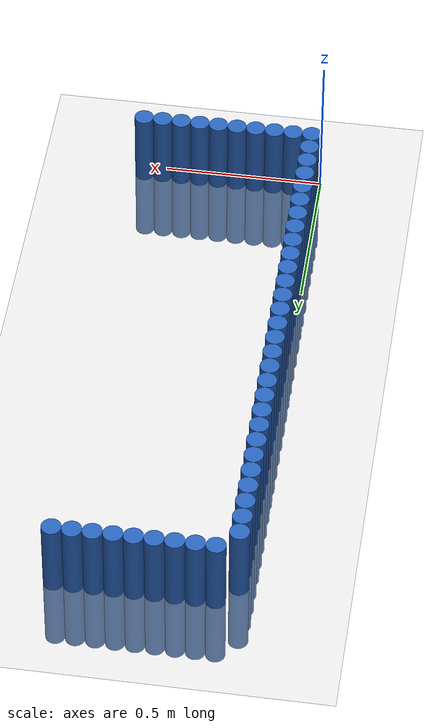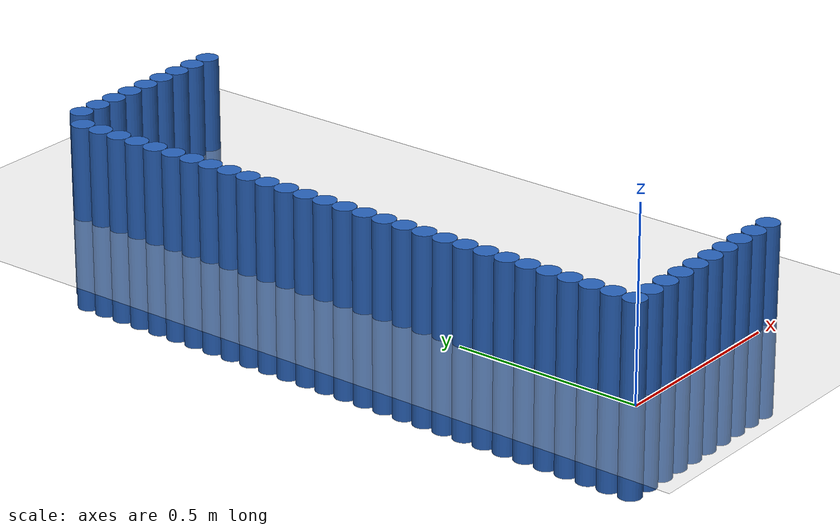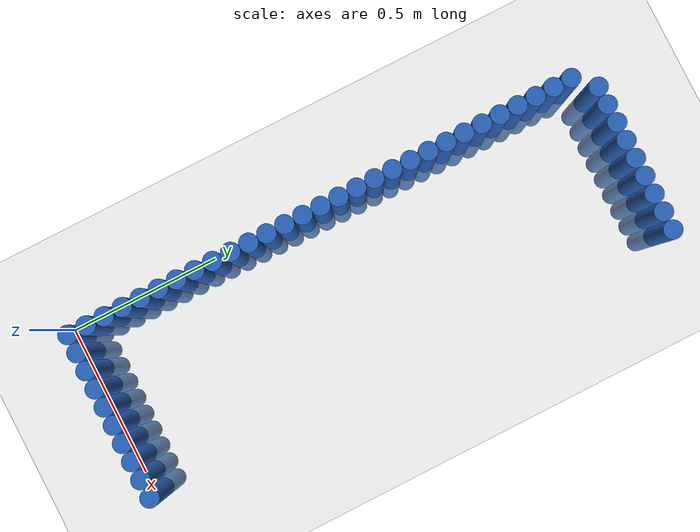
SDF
<sdf version="1.6">
 <world name="default">
  <model name="ground_plane">
   <static>1</static>
   <link name="link">
    <collision name="collision">
     <geometry><plane><normal>0 0 1</normal><size>100 100</size></plane></geometry>
     <surface><friction><ode><mu>100</mu><mu2>50</mu2></ode></friction></surface>
    </collision>
    <visual name="visual">
     <cast_shadows>0</cast_shadows>
     <geometry><plane><normal>0 0 1</normal><size>100 100</size></plane></geometry>
     <material>
      <script><uri>file://media/materials/scripts/gazebo.material</uri><name>Gazebo/Grey</name></script>
     </material>
    </visual>
   </link>
  </model>
  <model name="unit_cylinder_0">
   <static>1</static>
   <pose>0.030000 0.030000 0.000000 0.000000 0.000000 0.000000</pose>
   <link name="link">
    <inertial>
     <mass>1</mass>
     <inertia><ixx>0.145833</ixx><ixy>0</ixy><ixz>0</ixz><iyy>0.145833</iyy><iyz>0</iyz><izz>0.125</izz></inertia>
    </inertial>
    <collision name="collision">
     <geometry><cylinder><radius>0.030000</radius><length>0.5</length></cylinder></geometry>
    </collision>
    <visual name="visual">
     <geometry><cylinder><radius>0.030000</radius><length>0.5</length></cylinder></geometry>
     <material>
      <ambient>0.152000 0.379000 0.720000 1</ambient>
      <diffuse>0.152000 0.379000 0.720000 1</diffuse>
     </material>
     <material>
      <script><name>Gazebo/Grey</name><uri>file://media/materials/scripts/gazebo.material</uri></script>
     </material>
    </visual>
   </link>
  </model>
  <model name="unit_cylinder_1">
   <static>1</static>
   <pose>0.030000 0.090000 0.000000 0.000000 0.000000 0.000000</pose>
   <link name="link">
    <inertial>
     <mass>1</mass>
     <inertia><ixx>0.145833</ixx><ixy>0</ixy><ixz>0</ixz><iyy>0.145833</iyy><iyz>0</iyz><izz>0.125</izz></inertia>
    </inertial>
    <collision name="collision">
     <geometry><cylinder><radius>0.030000</radius><length>0.5</length></cylinder></geometry>
    </collision>
    <visual name="visual">
     <geometry><cylinder><radius>0.030000</radius><length>0.5</length></cylinder></geometry>
     <material>
      <ambient>0.152000 0.379000 0.720000 1</ambient>
      <diffuse>0.152000 0.379000 0.720000 1</diffuse>
     </material>
     <material>
      <script><name>Gazebo/Grey</name><uri>file://media/materials/scripts/gazebo.material</uri></script>
     </material>
    </visual>
   </link>
  </model>
  <model name="unit_cylinder_2">
   <static>1</static>
   <pose>0.030000 0.150000 0.000000 0.000000 0.000000 0.000000</pose>
   <link name="link">
    <inertial>
     <mass>1</mass>
     <inertia><ixx>0.145833</ixx><ixy>0</ixy><ixz>0</ixz><iyy>0.145833</iyy><iyz>0</iyz><izz>0.125</izz></inertia>
    </inertial>
    <collision name="collision">
     <geometry><cylinder><radius>0.030000</radius><length>0.5</length></cylinder></geometry>
    </collision>
    <visual name="visual">
     <geometry><cylinder><radius>0.030000</radius><length>0.5</length></cylinder></geometry>
     <material>
      <ambient>0.152000 0.379000 0.720000 1</ambient>
      <diffuse>0.152000 0.379000 0.720000 1</diffuse>
     </material>
     <material>
      <script><name>Gazebo/Grey</name><uri>file://media/materials/scripts/gazebo.material</uri></script>
     </material>
    </visual>
   </link>
  </model>
  <model name="unit_cylinder_3">
   <static>1</static>
   <pose>0.030000 0.210000 0.000000 0.000000 0.000000 0.000000</pose>
   <link name="link">
    <inertial>
     <mass>1</mass>
     <inertia><ixx>0.145833</ixx><ixy>0</ixy><ixz>0</ixz><iyy>0.145833</iyy><iyz>0</iyz><izz>0.125</izz></inertia>
    </inertial>
    <collision name="collision">
     <geometry><cylinder><radius>0.030000</radius><length>0.5</length></cylinder></geometry>
    </collision>
    <visual name="visual">
     <geometry><cylinder><radius>0.030000</radius><length>0.5</length></cylinder></geometry>
     <material>
      <ambient>0.152000 0.379000 0.720000 1</ambient>
      <diffuse>0.152000 0.379000 0.720000 1</diffuse>
     </material>
     <material>
      <script><name>Gazebo/Grey</name><uri>file://media/materials/scripts/gazebo.material</uri></script>
     </material>
    </visual>
   </link>
  </model>
  <model name="unit_cylinder_4">
   <static>1</static>
   <pose>0.030000 0.270000 0.000000 0.000000 0.000000 0.000000</pose>
   <link name="link">
    <inertial>
     <mass>1</mass>
     <inertia><ixx>0.145833</ixx><ixy>0</ixy><ixz>0</ixz><iyy>0.145833</iyy><iyz>0</iyz><izz>0.125</izz></inertia>
    </inertial>
    <collision name="collision">
     <geometry><cylinder><radius>0.030000</radius><length>0.5</length></cylinder></geometry>
    </collision>
    <visual name="visual">
     <geometry><cylinder><radius>0.030000</radius><length>0.5</length></cylinder></geometry>
     <material>
      <ambient>0.152000 0.379000 0.720000 1</ambient>
      <diffuse>0.152000 0.379000 0.720000 1</diffuse>
     </material>
     <material>
      <script><name>Gazebo/Grey</name><uri>file://media/materials/scripts/gazebo.material</uri></script>
     </material>
    </visual>
   </link>
  </model>
  <model name="unit_cylinder_5">
   <static>1</static>
   <pose>0.030000 0.330000 0.000000 0.000000 0.000000 0.000000</pose>
   <link name="link">
    <inertial>
     <mass>1</mass>
     <inertia><ixx>0.145833</ixx><ixy>0</ixy><ixz>0</ixz><iyy>0.145833</iyy><iyz>0</iyz><izz>0.125</izz></inertia>
    </inertial>
    <collision name="collision">
     <geometry><cylinder><radius>0.030000</radius><length>0.5</length></cylinder></geometry>
    </collision>
    <visual name="visual">
     <geometry><cylinder><radius>0.030000</radius><length>0.5</length></cylinder></geometry>
     <material>
      <ambient>0.152000 0.379000 0.720000 1</ambient>
      <diffuse>0.152000 0.379000 0.720000 1</diffuse>
     </material>
     <material>
      <script><name>Gazebo/Grey</name><uri>file://media/materials/scripts/gazebo.material</uri></script>
     </material>
    </visual>
   </link>
  </model>
  <model name="unit_cylinder_6">
   <static>1</static>
   <pose>0.030000 0.390000 0.000000 0.000000 0.000000 0.000000</pose>
   <link name="link">
    <inertial>
     <mass>1</mass>
     <inertia><ixx>0.145833</ixx><ixy>0</ixy><ixz>0</ixz><iyy>0.145833</iyy><iyz>0</iyz><izz>0.125</izz></inertia>
    </inertial>
    <collision name="collision">
     <geometry><cylinder><radius>0.030000</radius><length>0.5</length></cylinder></geometry>
    </collision>
    <visual name="visual">
     <geometry><cylinder><radius>0.030000</radius><length>0.5</length></cylinder></geometry>
     <material>
      <ambient>0.152000 0.379000 0.720000 1</ambient>
      <diffuse>0.152000 0.379000 0.720000 1</diffuse>
     </material>
     <material>
      <script><name>Gazebo/Grey</name><uri>file://media/materials/scripts/gazebo.material</uri></script>
     </material>
    </visual>
   </link>
  </model>
  <model name="unit_cylinder_7">
   <static>1</static>
   <pose>0.030000 0.450000 0.000000 0.000000 0.000000 0.000000</pose>
   <link name="link">
    <inertial>
     <mass>1</mass>
     <inertia><ixx>0.145833</ixx><ixy>0</ixy><ixz>0</ixz><iyy>0.145833</iyy><iyz>0</iyz><izz>0.125</izz></inertia>
    </inertial>
    <collision name="collision">
     <geometry><cylinder><radius>0.030000</radius><length>0.5</length></cylinder></geometry>
    </collision>
    <visual name="visual">
     <geometry><cylinder><radius>0.030000</radius><length>0.5</length></cylinder></geometry>
     <material>
      <ambient>0.152000 0.379000 0.720000 1</ambient>
      <diffuse>0.152000 0.379000 0.720000 1</diffuse>
     </material>
     <material>
      <script><name>Gazebo/Grey</name><uri>file://media/materials/scripts/gazebo.material</uri></script>
     </material>
    </visual>
   </link>
  </model>
  <model name="unit_cylinder_8">
   <static>1</static>
   <pose>0.030000 0.510000 0.000000 0.000000 0.000000 0.000000</pose>
   <link name="link">
    <inertial>
     <mass>1</mass>
     <inertia><ixx>0.145833</ixx><ixy>0</ixy><ixz>0</ixz><iyy>0.145833</iyy><iyz>0</iyz><izz>0.125</izz></inertia>
    </inertial>
    <collision name="collision">
     <geometry><cylinder><radius>0.030000</radius><length>0.5</length></cylinder></geometry>
    </collision>
    <visual name="visual">
     <geometry><cylinder><radius>0.030000</radius><length>0.5</length></cylinder></geometry>
     <material>
      <ambient>0.152000 0.379000 0.720000 1</ambient>
      <diffuse>0.152000 0.379000 0.720000 1</diffuse>
     </material>
     <material>
      <script><name>Gazebo/Grey</name><uri>file://media/materials/scripts/gazebo.material</uri></script>
     </material>
    </visual>
   </link>
  </model>
  <model name="unit_cylinder_9">
   <static>1</static>
   <pose>0.030000 0.570000 0.000000 0.000000 0.000000 0.000000</pose>
   <link name="link">
    <inertial>
     <mass>1</mass>
     <inertia><ixx>0.145833</ixx><ixy>0</ixy><ixz>0</ixz><iyy>0.145833</iyy><iyz>0</iyz><izz>0.125</izz></inertia>
    </inertial>
    <collision name="collision">
     <geometry><cylinder><radius>0.030000</radius><length>0.5</length></cylinder></geometry>
    </collision>
    <visual name="visual">
     <geometry><cylinder><radius>0.030000</radius><length>0.5</length></cylinder></geometry>
     <material>
      <ambient>0.152000 0.379000 0.720000 1</ambient>
      <diffuse>0.152000 0.379000 0.720000 1</diffuse>
     </material>
     <material>
      <script><name>Gazebo/Grey</name><uri>file://media/materials/scripts/gazebo.material</uri></script>
     </material>
    </visual>
   </link>
  </model>
  <model name="unit_cylinder_10">
   <static>1</static>
   <pose>0.030000 0.630000 0.000000 0.000000 0.000000 0.000000</pose>
   <link name="link">
    <inertial>
     <mass>1</mass>
     <inertia><ixx>0.145833</ixx><ixy>0</ixy><ixz>0</ixz><iyy>0.145833</iyy><iyz>0</iyz><izz>0.125</izz></inertia>
    </inertial>
    <collision name="collision">
     <geometry><cylinder><radius>0.030000</radius><length>0.5</length></cylinder></geometry>
    </collision>
    <visual name="visual">
     <geometry><cylinder><radius>0.030000</radius><length>0.5</length></cylinder></geometry>
     <material>
      <ambient>0.152000 0.379000 0.720000 1</ambient>
      <diffuse>0.152000 0.379000 0.720000 1</diffuse>
     </material>
     <material>
      <script><name>Gazebo/Grey</name><uri>file://media/materials/scripts/gazebo.material</uri></script>
     </material>
    </visual>
   </link>
  </model>
  <model name="unit_cylinder_11">
   <static>1</static>
   <pose>0.030000 0.690000 0.000000 0.000000 0.000000 0.000000</pose>
   <link name="link">
    <inertial>
     <mass>1</mass>
     <inertia><ixx>0.145833</ixx><ixy>0</ixy><ixz>0</ixz><iyy>0.145833</iyy><iyz>0</iyz><izz>0.125</izz></inertia>
    </inertial>
    <collision name="collision">
     <geometry><cylinder><radius>0.030000</radius><length>0.5</length></cylinder></geometry>
    </collision>
    <visual name="visual">
     <geometry><cylinder><radius>0.030000</radius><length>0.5</length></cylinder></geometry>
     <material>
      <ambient>0.152000 0.379000 0.720000 1</ambient>
      <diffuse>0.152000 0.379000 0.720000 1</diffuse>
     </material>
     <material>
      <script><name>Gazebo/Grey</name><uri>file://media/materials/scripts/gazebo.material</uri></script>
     </material>
    </visual>
   </link>
  </model>
  <model name="unit_cylinder_12">
   <static>1</static>
   <pose>0.030000 0.750000 0.000000 0.000000 0.000000 0.000000</pose>
   <link name="link">
    <inertial>
     <mass>1</mass>
     <inertia><ixx>0.145833</ixx><ixy>0</ixy><ixz>0</ixz><iyy>0.145833</iyy><iyz>0</iyz><izz>0.125</izz></inertia>
    </inertial>
    <collision name="collision">
     <geometry><cylinder><radius>0.030000</radius><length>0.5</length></cylinder></geometry>
    </collision>
    <visual name="visual">
     <geometry><cylinder><radius>0.030000</radius><length>0.5</length></cylinder></geometry>
     <material>
      <ambient>0.152000 0.379000 0.720000 1</ambient>
      <diffuse>0.152000 0.379000 0.720000 1</diffuse>
     </material>
     <material>
      <script><name>Gazebo/Grey</name><uri>file://media/materials/scripts/gazebo.material</uri></script>
     </material>
    </visual>
   </link>
  </model>
  <model name="unit_cylinder_13">
   <static>1</static>
   <pose>0.030000 0.810000 0.000000 0.000000 0.000000 0.000000</pose>
   <link name="link">
    <inertial>
     <mass>1</mass>
     <inertia><ixx>0.145833</ixx><ixy>0</ixy><ixz>0</ixz><iyy>0.145833</iyy><iyz>0</iyz><izz>0.125</izz></inertia>
    </inertial>
    <collision name="collision">
     <geometry><cylinder><radius>0.030000</radius><length>0.5</length></cylinder></geometry>
    </collision>
    <visual name="visual">
     <geometry><cylinder><radius>0.030000</radius><length>0.5</length></cylinder></geometry>
     <material>
      <ambient>0.152000 0.379000 0.720000 1</ambient>
      <diffuse>0.152000 0.379000 0.720000 1</diffuse>
     </material>
     <material>
      <script><name>Gazebo/Grey</name><uri>file://media/materials/scripts/gazebo.material</uri></script>
     </material>
    </visual>
   </link>
  </model>
  <model name="unit_cylinder_14">
   <static>1</static>
   <pose>0.030000 0.870000 0.000000 0.000000 0.000000 0.000000</pose>
   <link name="link">
    <inertial>
     <mass>1</mass>
     <inertia><ixx>0.145833</ixx><ixy>0</ixy><ixz>0</ixz><iyy>0.145833</iyy><iyz>0</iyz><izz>0.125</izz></inertia>
    </inertial>
    <collision name="collision">
     <geometry><cylinder><radius>0.030000</radius><length>0.5</length></cylinder></geometry>
    </collision>
    <visual name="visual">
     <geometry><cylinder><radius>0.030000</radius><length>0.5</length></cylinder></geometry>
     <material>
      <ambient>0.152000 0.379000 0.720000 1</ambient>
      <diffuse>0.152000 0.379000 0.720000 1</diffuse>
     </material>
     <material>
      <script><name>Gazebo/Grey</name><uri>file://media/materials/scripts/gazebo.material</uri></script>
     </material>
    </visual>
   </link>
  </model>
  <model name="unit_cylinder_15">
   <static>1</static>
   <pose>0.030000 0.930000 0.000000 0.000000 0.000000 0.000000</pose>
   <link name="link">
    <inertial>
     <mass>1</mass>
     <inertia><ixx>0.145833</ixx><ixy>0</ixy><ixz>0</ixz><iyy>0.145833</iyy><iyz>0</iyz><izz>0.125</izz></inertia>
    </inertial>
    <collision name="collision">
     <geometry><cylinder><radius>0.030000</radius><length>0.5</length></cylinder></geometry>
    </collision>
    <visual name="visual">
     <geometry><cylinder><radius>0.030000</radius><length>0.5</length></cylinder></geometry>
     <material>
      <ambient>0.152000 0.379000 0.720000 1</ambient>
      <diffuse>0.152000 0.379000 0.720000 1</diffuse>
     </material>
     <material>
      <script><name>Gazebo/Grey</name><uri>file://media/materials/scripts/gazebo.material</uri></script>
     </material>
    </visual>
   </link>
  </model>
  <model name="unit_cylinder_16">
   <static>1</static>
   <pose>0.030000 0.990000 0.000000 0.000000 0.000000 0.000000</pose>
   <link name="link">
    <inertial>
     <mass>1</mass>
     <inertia><ixx>0.145833</ixx><ixy>0</ixy><ixz>0</ixz><iyy>0.145833</iyy><iyz>0</iyz><izz>0.125</izz></inertia>
    </inertial>
    <collision name="collision">
     <geometry><cylinder><radius>0.030000</radius><length>0.5</length></cylinder></geometry>
    </collision>
    <visual name="visual">
     <geometry><cylinder><radius>0.030000</radius><length>0.5</length></cylinder></geometry>
     <material>
      <ambient>0.152000 0.379000 0.720000 1</ambient>
      <diffuse>0.152000 0.379000 0.720000 1</diffuse>
     </material>
     <material>
      <script><name>Gazebo/Grey</name><uri>file://media/materials/scripts/gazebo.material</uri></script>
     </material>
    </visual>
   </link>
  </model>
  <model name="unit_cylinder_17">
   <static>1</static>
   <pose>0.030000 1.050000 0.000000 0.000000 0.000000 0.000000</pose>
   <link name="link">
    <inertial>
     <mass>1</mass>
     <inertia><ixx>0.145833</ixx><ixy>0</ixy><ixz>0</ixz><iyy>0.145833</iyy><iyz>0</iyz><izz>0.125</izz></inertia>
    </inertial>
    <collision name="collision">
     <geometry><cylinder><radius>0.030000</radius><length>0.5</length></cylinder></geometry>
    </collision>
    <visual name="visual">
     <geometry><cylinder><radius>0.030000</radius><length>0.5</length></cylinder></geometry>
     <material>
      <ambient>0.152000 0.379000 0.720000 1</ambient>
      <diffuse>0.152000 0.379000 0.720000 1</diffuse>
     </material>
     <material>
      <script><name>Gazebo/Grey</name><uri>file://media/materials/scripts/gazebo.material</uri></script>
     </material>
    </visual>
   </link>
  </model>
  <model name="unit_cylinder_18">
   <static>1</static>
   <pose>0.030000 1.110000 0.000000 0.000000 0.000000 0.000000</pose>
   <link name="link">
    <inertial>
     <mass>1</mass>
     <inertia><ixx>0.145833</ixx><ixy>0</ixy><ixz>0</ixz><iyy>0.145833</iyy><iyz>0</iyz><izz>0.125</izz></inertia>
    </inertial>
    <collision name="collision">
     <geometry><cylinder><radius>0.030000</radius><length>0.5</length></cylinder></geometry>
    </collision>
    <visual name="visual">
     <geometry><cylinder><radius>0.030000</radius><length>0.5</length></cylinder></geometry>
     <material>
      <ambient>0.152000 0.379000 0.720000 1</ambient>
      <diffuse>0.152000 0.379000 0.720000 1</diffuse>
     </material>
     <material>
      <script><name>Gazebo/Grey</name><uri>file://media/materials/scripts/gazebo.material</uri></script>
     </material>
    </visual>
   </link>
  </model>
  <model name="unit_cylinder_19">
   <static>1</static>
   <pose>0.030000 1.170000 0.000000 0.000000 0.000000 0.000000</pose>
   <link name="link">
    <inertial>
     <mass>1</mass>
     <inertia><ixx>0.145833</ixx><ixy>0</ixy><ixz>0</ixz><iyy>0.145833</iyy><iyz>0</iyz><izz>0.125</izz></inertia>
    </inertial>
    <collision name="collision">
     <geometry><cylinder><radius>0.030000</radius><length>0.5</length></cylinder></geometry>
    </collision>
    <visual name="visual">
     <geometry><cylinder><radius>0.030000</radius><length>0.5</length></cylinder></geometry>
     <material>
      <ambient>0.152000 0.379000 0.720000 1</ambient>
      <diffuse>0.152000 0.379000 0.720000 1</diffuse>
     </material>
     <material>
      <script><name>Gazebo/Grey</name><uri>file://media/materials/scripts/gazebo.material</uri></script>
     </material>
    </visual>
   </link>
  </model>
  <model name="unit_cylinder_20">
   <static>1</static>
   <pose>0.030000 1.230000 0.000000 0.000000 0.000000 0.000000</pose>
   <link name="link">
    <inertial>
     <mass>1</mass>
     <inertia><ixx>0.145833</ixx><ixy>0</ixy><ixz>0</ixz><iyy>0.145833</iyy><iyz>0</iyz><izz>0.125</izz></inertia>
    </inertial>
    <collision name="collision">
     <geometry><cylinder><radius>0.030000</radius><length>0.5</length></cylinder></geometry>
    </collision>
    <visual name="visual">
     <geometry><cylinder><radius>0.030000</radius><length>0.5</length></cylinder></geometry>
     <material>
      <ambient>0.152000 0.379000 0.720000 1</ambient>
      <diffuse>0.152000 0.379000 0.720000 1</diffuse>
     </material>
     <material>
      <script><name>Gazebo/Grey</name><uri>file://media/materials/scripts/gazebo.material</uri></script>
     </material>
    </visual>
   </link>
  </model>
  <model name="unit_cylinder_21">
   <static>1</static>
   <pose>0.030000 1.290000 0.000000 0.000000 0.000000 0.000000</pose>
   <link name="link">
    <inertial>
     <mass>1</mass>
     <inertia><ixx>0.145833</ixx><ixy>0</ixy><ixz>0</ixz><iyy>0.145833</iyy><iyz>0</iyz><izz>0.125</izz></inertia>
    </inertial>
    <collision name="collision">
     <geometry><cylinder><radius>0.030000</radius><length>0.5</length></cylinder></geometry>
    </collision>
    <visual name="visual">
     <geometry><cylinder><radius>0.030000</radius><length>0.5</length></cylinder></geometry>
     <material>
      <ambient>0.152000 0.379000 0.720000 1</ambient>
      <diffuse>0.152000 0.379000 0.720000 1</diffuse>
     </material>
     <material>
      <script><name>Gazebo/Grey</name><uri>file://media/materials/scripts/gazebo.material</uri></script>
     </material>
    </visual>
   </link>
  </model>
  <model name="unit_cylinder_22">
   <static>1</static>
   <pose>0.030000 1.350000 0.000000 0.000000 0.000000 0.000000</pose>
   <link name="link">
    <inertial>
     <mass>1</mass>
     <inertia><ixx>0.145833</ixx><ixy>0</ixy><ixz>0</ixz><iyy>0.145833</iyy><iyz>0</iyz><izz>0.125</izz></inertia>
    </inertial>
    <collision name="collision">
     <geometry><cylinder><radius>0.030000</radius><length>0.5</length></cylinder></geometry>
    </collision>
    <visual name="visual">
     <geometry><cylinder><radius>0.030000</radius><length>0.5</length></cylinder></geometry>
     <material>
      <ambient>0.152000 0.379000 0.720000 1</ambient>
      <diffuse>0.152000 0.379000 0.720000 1</diffuse>
     </material>
     <material>
      <script><name>Gazebo/Grey</name><uri>file://media/materials/scripts/gazebo.material</uri></script>
     </material>
    </visual>
   </link>
  </model>
  <model name="unit_cylinder_23">
   <static>1</static>
   <pose>0.030000 1.410000 0.000000 0.000000 0.000000 0.000000</pose>
   <link name="link">
    <inertial>
     <mass>1</mass>
     <inertia><ixx>0.145833</ixx><ixy>0</ixy><ixz>0</ixz><iyy>0.145833</iyy><iyz>0</iyz><izz>0.125</izz></inertia>
    </inertial>
    <collision name="collision">
     <geometry><cylinder><radius>0.030000</radius><length>0.5</length></cylinder></geometry>
    </collision>
    <visual name="visual">
     <geometry><cylinder><radius>0.030000</radius><length>0.5</length></cylinder></geometry>
     <material>
      <ambient>0.152000 0.379000 0.720000 1</ambient>
      <diffuse>0.152000 0.379000 0.720000 1</diffuse>
     </material>
     <material>
      <script><name>Gazebo/Grey</name><uri>file://media/materials/scripts/gazebo.material</uri></script>
     </material>
    </visual>
   </link>
  </model>
  <model name="unit_cylinder_24">
   <static>1</static>
   <pose>0.030000 1.470000 0.000000 0.000000 0.000000 0.000000</pose>
   <link name="link">
    <inertial>
     <mass>1</mass>
     <inertia><ixx>0.145833</ixx><ixy>0</ixy><ixz>0</ixz><iyy>0.145833</iyy><iyz>0</iyz><izz>0.125</izz></inertia>
    </inertial>
    <collision name="collision">
     <geometry><cylinder><radius>0.030000</radius><length>0.5</length></cylinder></geometry>
    </collision>
    <visual name="visual">
     <geometry><cylinder><radius>0.030000</radius><length>0.5</length></cylinder></geometry>
     <material>
      <ambient>0.152000 0.379000 0.720000 1</ambient>
      <diffuse>0.152000 0.379000 0.720000 1</diffuse>
     </material>
     <material>
      <script><name>Gazebo/Grey</name><uri>file://media/materials/scripts/gazebo.material</uri></script>
     </material>
    </visual>
   </link>
  </model>
  <model name="unit_cylinder_25">
   <static>1</static>
   <pose>0.030000 1.530000 0.000000 0.000000 0.000000 0.000000</pose>
   <link name="link">
    <inertial>
     <mass>1</mass>
     <inertia><ixx>0.145833</ixx><ixy>0</ixy><ixz>0</ixz><iyy>0.145833</iyy><iyz>0</iyz><izz>0.125</izz></inertia>
    </inertial>
    <collision name="collision">
     <geometry><cylinder><radius>0.030000</radius><length>0.5</length></cylinder></geometry>
    </collision>
    <visual name="visual">
     <geometry><cylinder><radius>0.030000</radius><length>0.5</length></cylinder></geometry>
     <material>
      <ambient>0.152000 0.379000 0.720000 1</ambient>
      <diffuse>0.152000 0.379000 0.720000 1</diffuse>
     </material>
     <material>
      <script><name>Gazebo/Grey</name><uri>file://media/materials/scripts/gazebo.material</uri></script>
     </material>
    </visual>
   </link>
  </model>
  <model name="unit_cylinder_26">
   <static>1</static>
   <pose>0.030000 1.590000 0.000000 0.000000 0.000000 0.000000</pose>
   <link name="link">
    <inertial>
     <mass>1</mass>
     <inertia><ixx>0.145833</ixx><ixy>0</ixy><ixz>0</ixz><iyy>0.145833</iyy><iyz>0</iyz><izz>0.125</izz></inertia>
    </inertial>
    <collision name="collision">
     <geometry><cylinder><radius>0.030000</radius><length>0.5</length></cylinder></geometry>
    </collision>
    <visual name="visual">
     <geometry><cylinder><radius>0.030000</radius><length>0.5</length></cylinder></geometry>
     <material>
      <ambient>0.152000 0.379000 0.720000 1</ambient>
      <diffuse>0.152000 0.379000 0.720000 1</diffuse>
     </material>
     <material>
      <script><name>Gazebo/Grey</name><uri>file://media/materials/scripts/gazebo.material</uri></script>
     </material>
    </visual>
   </link>
  </model>
  <model name="unit_cylinder_27">
   <static>1</static>
   <pose>0.030000 1.650000 0.000000 0.000000 0.000000 0.000000</pose>
   <link name="link">
    <inertial>
     <mass>1</mass>
     <inertia><ixx>0.145833</ixx><ixy>0</ixy><ixz>0</ixz><iyy>0.145833</iyy><iyz>0</iyz><izz>0.125</izz></inertia>
    </inertial>
    <collision name="collision">
     <geometry><cylinder><radius>0.030000</radius><length>0.5</length></cylinder></geometry>
    </collision>
    <visual name="visual">
     <geometry><cylinder><radius>0.030000</radius><length>0.5</length></cylinder></geometry>
     <material>
      <ambient>0.152000 0.379000 0.720000 1</ambient>
      <diffuse>0.152000 0.379000 0.720000 1</diffuse>
     </material>
     <material>
      <script><name>Gazebo/Grey</name><uri>file://media/materials/scripts/gazebo.material</uri></script>
     </material>
    </visual>
   </link>
  </model>
  <model name="unit_cylinder_28">
   <static>1</static>
   <pose>0.030000 1.710000 0.000000 0.000000 0.000000 0.000000</pose>
   <link name="link">
    <inertial>
     <mass>1</mass>
     <inertia><ixx>0.145833</ixx><ixy>0</ixy><ixz>0</ixz><iyy>0.145833</iyy><iyz>0</iyz><izz>0.125</izz></inertia>
    </inertial>
    <collision name="collision">
     <geometry><cylinder><radius>0.030000</radius><length>0.5</length></cylinder></geometry>
    </collision>
    <visual name="visual">
     <geometry><cylinder><radius>0.030000</radius><length>0.5</length></cylinder></geometry>
     <material>
      <ambient>0.152000 0.379000 0.720000 1</ambient>
      <diffuse>0.152000 0.379000 0.720000 1</diffuse>
     </material>
     <material>
      <script><name>Gazebo/Grey</name><uri>file://media/materials/scripts/gazebo.material</uri></script>
     </material>
    </visual>
   </link>
  </model>
  <model name="unit_cylinder_29">
   <static>1</static>
   <pose>0.090000 0.030000 0.000000 0.000000 0.000000 0.000000</pose>
   <link name="link">
    <inertial>
     <mass>1</mass>
     <inertia><ixx>0.145833</ixx><ixy>0</ixy><ixz>0</ixz><iyy>0.145833</iyy><iyz>0</iyz><izz>0.125</izz></inertia>
    </inertial>
    <collision name="collision">
     <geometry><cylinder><radius>0.030000</radius><length>0.5</length></cylinder></geometry>
    </collision>
    <visual name="visual">
     <geometry><cylinder><radius>0.030000</radius><length>0.5</length></cylinder></geometry>
     <material>
      <ambient>0.152000 0.379000 0.720000 1</ambient>
      <diffuse>0.152000 0.379000 0.720000 1</diffuse>
     </material>
     <material>
      <script><name>Gazebo/Grey</name><uri>file://media/materials/scripts/gazebo.material</uri></script>
     </material>
    </visual>
   </link>
  </model>
  <model name="unit_cylinder_30">
   <static>1</static>
   <pose>0.090000 1.770000 0.000000 0.000000 0.000000 0.000000</pose>
   <link name="link">
    <inertial>
     <mass>1</mass>
     <inertia><ixx>0.145833</ixx><ixy>0</ixy><ixz>0</ixz><iyy>0.145833</iyy><iyz>0</iyz><izz>0.125</izz></inertia>
    </inertial>
    <collision name="collision">
     <geometry><cylinder><radius>0.030000</radius><length>0.5</length></cylinder></geometry>
    </collision>
    <visual name="visual">
     <geometry><cylinder><radius>0.030000</radius><length>0.5</length></cylinder></geometry>
     <material>
      <ambient>0.152000 0.379000 0.720000 1</ambient>
      <diffuse>0.152000 0.379000 0.720000 1</diffuse>
     </material>
     <material>
      <script><name>Gazebo/Grey</name><uri>file://media/materials/scripts/gazebo.material</uri></script>
     </material>
    </visual>
   </link>
  </model>
  <model name="unit_cylinder_31">
   <static>1</static>
   <pose>0.150000 0.030000 0.000000 0.000000 0.000000 0.000000</pose>
   <link name="link">
    <inertial>
     <mass>1</mass>
     <inertia><ixx>0.145833</ixx><ixy>0</ixy><ixz>0</ixz><iyy>0.145833</iyy><iyz>0</iyz><izz>0.125</izz></inertia>
    </inertial>
    <collision name="collision">
     <geometry><cylinder><radius>0.030000</radius><length>0.5</length></cylinder></geometry>
    </collision>
    <visual name="visual">
     <geometry><cylinder><radius>0.030000</radius><length>0.5</length></cylinder></geometry>
     <material>
      <ambient>0.152000 0.379000 0.720000 1</ambient>
      <diffuse>0.152000 0.379000 0.720000 1</diffuse>
     </material>
     <material>
      <script><name>Gazebo/Grey</name><uri>file://media/materials/scripts/gazebo.material</uri></script>
     </material>
    </visual>
   </link>
  </model>
  <model name="unit_cylinder_32">
   <static>1</static>
   <pose>0.150000 1.770000 0.000000 0.000000 0.000000 0.000000</pose>
   <link name="link">
    <inertial>
     <mass>1</mass>
     <inertia><ixx>0.145833</ixx><ixy>0</ixy><ixz>0</ixz><iyy>0.145833</iyy><iyz>0</iyz><izz>0.125</izz></inertia>
    </inertial>
    <collision name="collision">
     <geometry><cylinder><radius>0.030000</radius><length>0.5</length></cylinder></geometry>
    </collision>
    <visual name="visual">
     <geometry><cylinder><radius>0.030000</radius><length>0.5</length></cylinder></geometry>
     <material>
      <ambient>0.152000 0.379000 0.720000 1</ambient>
      <diffuse>0.152000 0.379000 0.720000 1</diffuse>
     </material>
     <material>
      <script><name>Gazebo/Grey</name><uri>file://media/materials/scripts/gazebo.material</uri></script>
     </material>
    </visual>
   </link>
  </model>
  <model name="unit_cylinder_33">
   <static>1</static>
   <pose>0.210000 0.030000 0.000000 0.000000 0.000000 0.000000</pose>
   <link name="link">
    <inertial>
     <mass>1</mass>
     <inertia><ixx>0.145833</ixx><ixy>0</ixy><ixz>0</ixz><iyy>0.145833</iyy><iyz>0</iyz><izz>0.125</izz></inertia>
    </inertial>
    <collision name="collision">
     <geometry><cylinder><radius>0.030000</radius><length>0.5</length></cylinder></geometry>
    </collision>
    <visual name="visual">
     <geometry><cylinder><radius>0.030000</radius><length>0.5</length></cylinder></geometry>
     <material>
      <ambient>0.152000 0.379000 0.720000 1</ambient>
      <diffuse>0.152000 0.379000 0.720000 1</diffuse>
     </material>
     <material>
      <script><name>Gazebo/Grey</name><uri>file://media/materials/scripts/gazebo.material</uri></script>
     </material>
    </visual>
   </link>
  </model>
  <model name="unit_cylinder_34">
   <static>1</static>
   <pose>0.210000 1.770000 0.000000 0.000000 0.000000 0.000000</pose>
   <link name="link">
    <inertial>
     <mass>1</mass>
     <inertia><ixx>0.145833</ixx><ixy>0</ixy><ixz>0</ixz><iyy>0.145833</iyy><iyz>0</iyz><izz>0.125</izz></inertia>
    </inertial>
    <collision name="collision">
     <geometry><cylinder><radius>0.030000</radius><length>0.5</length></cylinder></geometry>
    </collision>
    <visual name="visual">
     <geometry><cylinder><radius>0.030000</radius><length>0.5</length></cylinder></geometry>
     <material>
      <ambient>0.152000 0.379000 0.720000 1</ambient>
      <diffuse>0.152000 0.379000 0.720000 1</diffuse>
     </material>
     <material>
      <script><name>Gazebo/Grey</name><uri>file://media/materials/scripts/gazebo.material</uri></script>
     </material>
    </visual>
   </link>
  </model>
  <model name="unit_cylinder_35">
   <static>1</static>
   <pose>0.270000 0.030000 0.000000 0.000000 0.000000 0.000000</pose>
   <link name="link">
    <inertial>
     <mass>1</mass>
     <inertia><ixx>0.145833</ixx><ixy>0</ixy><ixz>0</ixz><iyy>0.145833</iyy><iyz>0</iyz><izz>0.125</izz></inertia>
    </inertial>
    <collision name="collision">
     <geometry><cylinder><radius>0.030000</radius><length>0.5</length></cylinder></geometry>
    </collision>
    <visual name="visual">
     <geometry><cylinder><radius>0.030000</radius><length>0.5</length></cylinder></geometry>
     <material>
      <ambient>0.152000 0.379000 0.720000 1</ambient>
      <diffuse>0.152000 0.379000 0.720000 1</diffuse>
     </material>
     <material>
      <script><name>Gazebo/Grey</name><uri>file://media/materials/scripts/gazebo.material</uri></script>
     </material>
    </visual>
   </link>
  </model>
  <model name="unit_cylinder_36">
   <static>1</static>
   <pose>0.270000 1.770000 0.000000 0.000000 0.000000 0.000000</pose>
   <link name="link">
    <inertial>
     <mass>1</mass>
     <inertia><ixx>0.145833</ixx><ixy>0</ixy><ixz>0</ixz><iyy>0.145833</iyy><iyz>0</iyz><izz>0.125</izz></inertia>
    </inertial>
    <collision name="collision">
     <geometry><cylinder><radius>0.030000</radius><length>0.5</length></cylinder></geometry>
    </collision>
    <visual name="visual">
     <geometry><cylinder><radius>0.030000</radius><length>0.5</length></cylinder></geometry>
     <material>
      <ambient>0.152000 0.379000 0.720000 1</ambient>
      <diffuse>0.152000 0.379000 0.720000 1</diffuse>
     </material>
     <material>
      <script><name>Gazebo/Grey</name><uri>file://media/materials/scripts/gazebo.material</uri></script>
     </material>
    </visual>
   </link>
  </model>
  <model name="unit_cylinder_37">
   <static>1</static>
   <pose>0.330000 0.030000 0.000000 0.000000 0.000000 0.000000</pose>
   <link name="link">
    <inertial>
     <mass>1</mass>
     <inertia><ixx>0.145833</ixx><ixy>0</ixy><ixz>0</ixz><iyy>0.145833</iyy><iyz>0</iyz><izz>0.125</izz></inertia>
    </inertial>
    <collision name="collision">
     <geometry><cylinder><radius>0.030000</radius><length>0.5</length></cylinder></geometry>
    </collision>
    <visual name="visual">
     <geometry><cylinder><radius>0.030000</radius><length>0.5</length></cylinder></geometry>
     <material>
      <ambient>0.152000 0.379000 0.720000 1</ambient>
      <diffuse>0.152000 0.379000 0.720000 1</diffuse>
     </material>
     <material>
      <script><name>Gazebo/Grey</name><uri>file://media/materials/scripts/gazebo.material</uri></script>
     </material>
    </visual>
   </link>
  </model>
  <model name="unit_cylinder_38">
   <static>1</static>
   <pose>0.330000 1.770000 0.000000 0.000000 0.000000 0.000000</pose>
   <link name="link">
    <inertial>
     <mass>1</mass>
     <inertia><ixx>0.145833</ixx><ixy>0</ixy><ixz>0</ixz><iyy>0.145833</iyy><iyz>0</iyz><izz>0.125</izz></inertia>
    </inertial>
    <collision name="collision">
     <geometry><cylinder><radius>0.030000</radius><length>0.5</length></cylinder></geometry>
    </collision>
    <visual name="visual">
     <geometry><cylinder><radius>0.030000</radius><length>0.5</length></cylinder></geometry>
     <material>
      <ambient>0.152000 0.379000 0.720000 1</ambient>
      <diffuse>0.152000 0.379000 0.720000 1</diffuse>
     </material>
     <material>
      <script><name>Gazebo/Grey</name><uri>file://media/materials/scripts/gazebo.material</uri></script>
     </material>
    </visual>
   </link>
  </model>
  <model name="unit_cylinder_39">
   <static>1</static>
   <pose>0.390000 0.030000 0.000000 0.000000 0.000000 0.000000</pose>
   <link name="link">
    <inertial>
     <mass>1</mass>
     <inertia><ixx>0.145833</ixx><ixy>0</ixy><ixz>0</ixz><iyy>0.145833</iyy><iyz>0</iyz><izz>0.125</izz></inertia>
    </inertial>
    <collision name="collision">
     <geometry><cylinder><radius>0.030000</radius><length>0.5</length></cylinder></geometry>
    </collision>
    <visual name="visual">
     <geometry><cylinder><radius>0.030000</radius><length>0.5</length></cylinder></geometry>
     <material>
      <ambient>0.152000 0.379000 0.720000 1</ambient>
      <diffuse>0.152000 0.379000 0.720000 1</diffuse>
     </material>
     <material>
      <script><name>Gazebo/Grey</name><uri>file://media/materials/scripts/gazebo.material</uri></script>
     </material>
    </visual>
   </link>
  </model>
  <model name="unit_cylinder_40">
   <static>1</static>
   <pose>0.390000 1.770000 0.000000 0.000000 0.000000 0.000000</pose>
   <link name="link">
    <inertial>
     <mass>1</mass>
     <inertia><ixx>0.145833</ixx><ixy>0</ixy><ixz>0</ixz><iyy>0.145833</iyy><iyz>0</iyz><izz>0.125</izz></inertia>
    </inertial>
    <collision name="collision">
     <geometry><cylinder><radius>0.030000</radius><length>0.5</length></cylinder></geometry>
    </collision>
    <visual name="visual">
     <geometry><cylinder><radius>0.030000</radius><length>0.5</length></cylinder></geometry>
     <material>
      <ambient>0.152000 0.379000 0.720000 1</ambient>
      <diffuse>0.152000 0.379000 0.720000 1</diffuse>
     </material>
     <material>
      <script><name>Gazebo/Grey</name><uri>file://media/materials/scripts/gazebo.material</uri></script>
     </material>
    </visual>
   </link>
  </model>
  <model name="unit_cylinder_41">
   <static>1</static>
   <pose>0.450000 0.030000 0.000000 0.000000 0.000000 0.000000</pose>
   <link name="link">
    <inertial>
     <mass>1</mass>
     <inertia><ixx>0.145833</ixx><ixy>0</ixy><ixz>0</ixz><iyy>0.145833</iyy><iyz>0</iyz><izz>0.125</izz></inertia>
    </inertial>
    <collision name="collision">
     <geometry><cylinder><radius>0.030000</radius><length>0.5</length></cylinder></geometry>
    </collision>
    <visual name="visual">
     <geometry><cylinder><radius>0.030000</radius><length>0.5</length></cylinder></geometry>
     <material>
      <ambient>0.152000 0.379000 0.720000 1</ambient>
      <diffuse>0.152000 0.379000 0.720000 1</diffuse>
     </material>
     <material>
      <script><name>Gazebo/Grey</name><uri>file://media/materials/scripts/gazebo.material</uri></script>
     </material>
    </visual>
   </link>
  </model>
  <model name="unit_cylinder_42">
   <static>1</static>
   <pose>0.450000 1.770000 0.000000 0.000000 0.000000 0.000000</pose>
   <link name="link">
    <inertial>
     <mass>1</mass>
     <inertia><ixx>0.145833</ixx><ixy>0</ixy><ixz>0</ixz><iyy>0.145833</iyy><iyz>0</iyz><izz>0.125</izz></inertia>
    </inertial>
    <collision name="collision">
     <geometry><cylinder><radius>0.030000</radius><length>0.5</length></cylinder></geometry>
    </collision>
    <visual name="visual">
     <geometry><cylinder><radius>0.030000</radius><length>0.5</length></cylinder></geometry>
     <material>
      <ambient>0.152000 0.379000 0.720000 1</ambient>
      <diffuse>0.152000 0.379000 0.720000 1</diffuse>
     </material>
     <material>
      <script><name>Gazebo/Grey</name><uri>file://media/materials/scripts/gazebo.material</uri></script>
     </material>
    </visual>
   </link>
  </model>
  <model name="unit_cylinder_43">
   <static>1</static>
   <pose>0.510000 0.030000 0.000000 0.000000 0.000000 0.000000</pose>
   <link name="link">
    <inertial>
     <mass>1</mass>
     <inertia><ixx>0.145833</ixx><ixy>0</ixy><ixz>0</ixz><iyy>0.145833</iyy><iyz>0</iyz><izz>0.125</izz></inertia>
    </inertial>
    <collision name="collision">
     <geometry><cylinder><radius>0.030000</radius><length>0.5</length></cylinder></geometry>
    </collision>
    <visual name="visual">
     <geometry><cylinder><radius>0.030000</radius><length>0.5</length></cylinder></geometry>
     <material>
      <ambient>0.152000 0.379000 0.720000 1</ambient>
      <diffuse>0.152000 0.379000 0.720000 1</diffuse>
     </material>
     <material>
      <script><name>Gazebo/Grey</name><uri>file://media/materials/scripts/gazebo.material</uri></script>
     </material>
    </visual>
   </link>
  </model>
  <model name="unit_cylinder_44">
   <static>1</static>
   <pose>0.510000 1.770000 0.000000 0.000000 0.000000 0.000000</pose>
   <link name="link">
    <inertial>
     <mass>1</mass>
     <inertia><ixx>0.145833</ixx><ixy>0</ixy><ixz>0</ixz><iyy>0.145833</iyy><iyz>0</iyz><izz>0.125</izz></inertia>
    </inertial>
    <collision name="collision">
     <geometry><cylinder><radius>0.030000</radius><length>0.5</length></cylinder></geometry>
    </collision>
    <visual name="visual">
     <geometry><cylinder><radius>0.030000</radius><length>0.5</length></cylinder></geometry>
     <material>
      <ambient>0.152000 0.379000 0.720000 1</ambient>
      <diffuse>0.152000 0.379000 0.720000 1</diffuse>
     </material>
     <material>
      <script><name>Gazebo/Grey</name><uri>file://media/materials/scripts/gazebo.material</uri></script>
     </material>
    </visual>
   </link>
  </model>
  <model name="unit_cylinder_45">
   <static>1</static>
   <pose>0.570000 0.030000 0.000000 0.000000 0.000000 0.000000</pose>
   <link name="link">
    <inertial>
     <mass>1</mass>
     <inertia><ixx>0.145833</ixx><ixy>0</ixy><ixz>0</ixz><iyy>0.145833</iyy><iyz>0</iyz><izz>0.125</izz></inertia>
    </inertial>
    <collision name="collision">
     <geometry><cylinder><radius>0.030000</radius><length>0.5</length></cylinder></geometry>
    </collision>
    <visual name="visual">
     <geometry><cylinder><radius>0.030000</radius><length>0.5</length></cylinder></geometry>
     <material>
      <ambient>0.152000 0.379000 0.720000 1</ambient>
      <diffuse>0.152000 0.379000 0.720000 1</diffuse>
     </material>
     <material>
      <script><name>Gazebo/Grey</name><uri>file://media/materials/scripts/gazebo.material</uri></script>
     </material>
    </visual>
   </link>
  </model>
  <model name="unit_cylinder_46">
   <static>1</static>
   <pose>0.570000 1.770000 0.000000 0.000000 0.000000 0.000000</pose>
   <link name="link">
    <inertial>
     <mass>1</mass>
     <inertia><ixx>0.145833</ixx><ixy>0</ixy><ixz>0</ixz><iyy>0.145833</iyy><iyz>0</iyz><izz>0.125</izz></inertia>
    </inertial>
    <collision name="collision">
     <geometry><cylinder><radius>0.030000</radius><length>0.5</length></cylinder></geometry>
    </collision>
    <visual name="visual">
     <geometry><cylinder><radius>0.030000</radius><length>0.5</length></cylinder></geometry>
     <material>
      <ambient>0.152000 0.379000 0.720000 1</ambient>
      <diffuse>0.152000 0.379000 0.720000 1</diffuse>
     </material>
     <material>
      <script><name>Gazebo/Grey</name><uri>file://media/materials/scripts/gazebo.material</uri></script>
     </material>
    </visual>
   </link>
  </model>
 </world>
</sdf>
